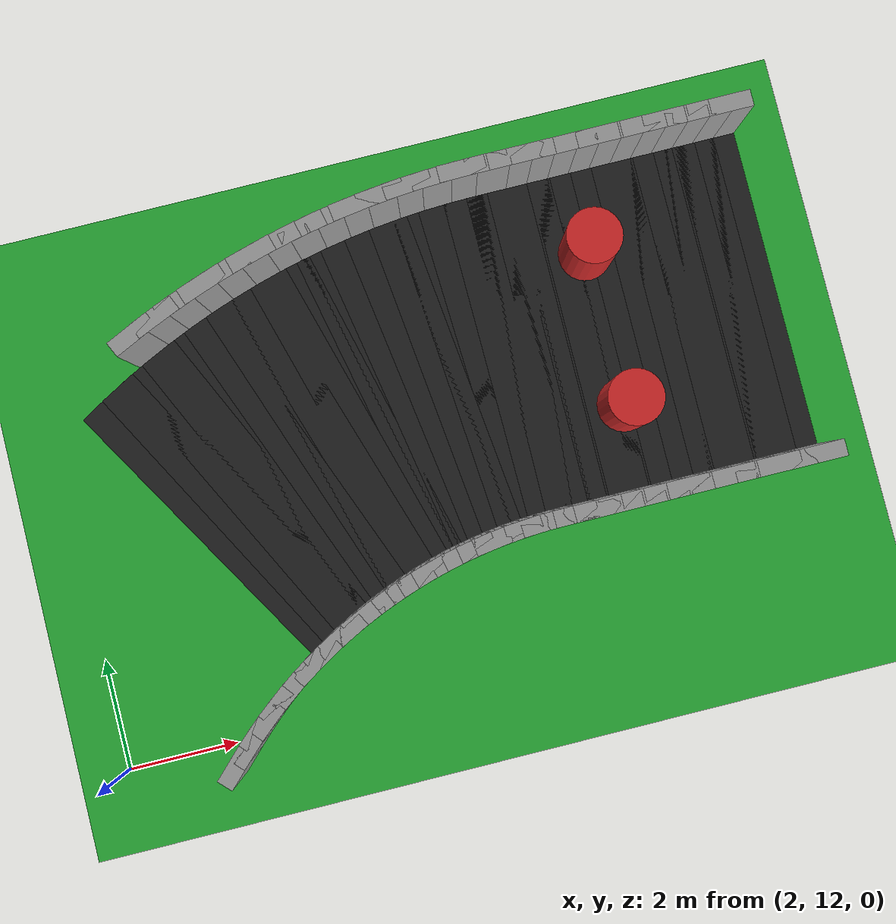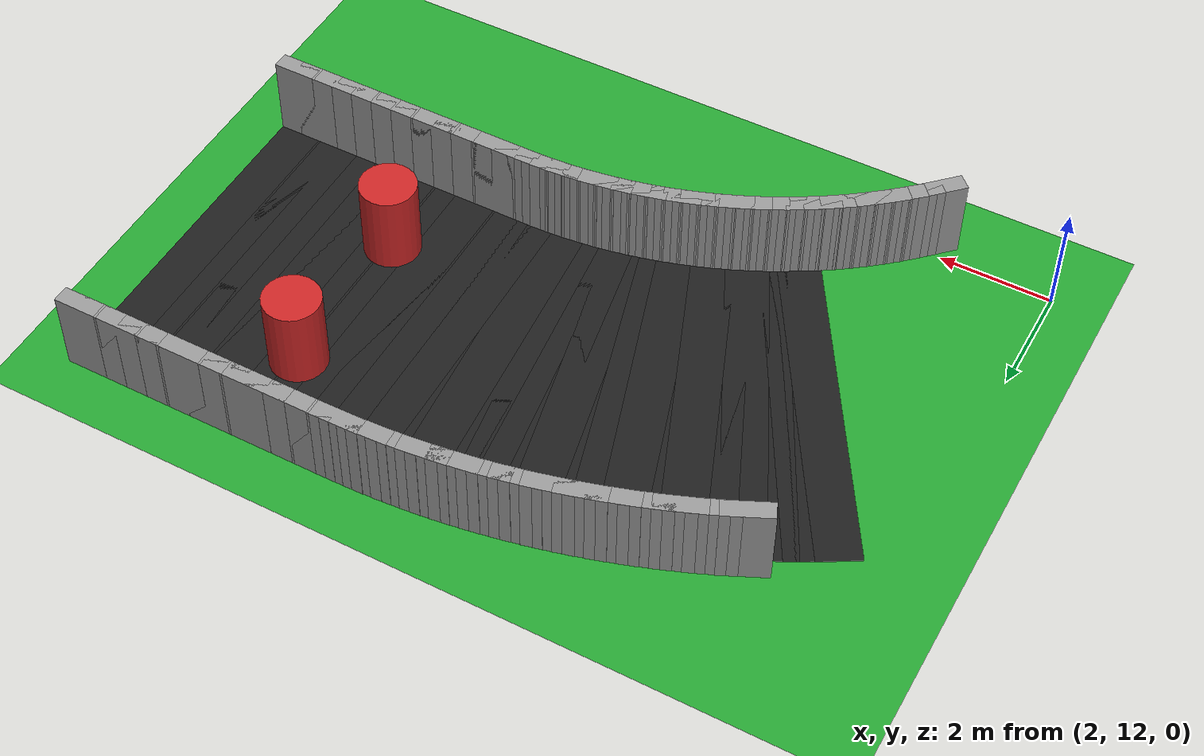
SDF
<sdf version="1.6">
 <world name="obstacle_mid">
  <include><uri>model://sun</uri></include>
  <model name="ground_plane">
   <static>true</static>
   <link name="link">
    <collision name="collision">
     <surface><friction><ode><mu>100</mu><mu2>50</mu2></ode></friction></surface>
     <geometry><plane><normal>0 0 1</normal><size>120 120</size></plane></geometry>
    </collision>
    <visual name="visual">
     <geometry><plane><normal>0 0 1</normal><size>120 120</size></plane></geometry>
     <material>
      <script><uri>file://media/materials/scripts/gazebo.material</uri><name>Gazebo/Green</name></script>
     </material>
    </visual>
   </link>
  </model>
  <model name="asphalt_191">
   <static>true</static>
   <pose>15.206 17.710 0.005 0 0 3.14159</pose>
   <link name="link">
    <visual name="visual">
     <geometry><box><size>0.760 6.000 0.010</size></box></geometry>
     <material>
      <script><uri>file://media/materials/scripts/gazebo.material</uri><name>Gazebo/Black</name></script>
     </material>
    </visual>
   </link>
  </model>
  <model name="curbL_191">
   <static>true</static>
   <pose>15.206 14.560 0.750 0 0 3.14159</pose>
   <link name="link">
    <collision name="collision"><geometry><box><size>0.760 0.300 1.500</size></box></geometry></collision>
    <visual name="visual">
     <geometry><box><size>0.760 0.300 1.500</size></box></geometry>
     <material>
      <script><uri>file://media/materials/scripts/gazebo.material</uri><name>Gazebo/Grey</name></script>
     </material>
    </visual>
   </link>
  </model>
  <model name="curbR_191">
   <static>true</static>
   <pose>15.206 20.860 0.750 0 0 3.14159</pose>
   <link name="link">
    <collision name="collision"><geometry><box><size>0.760 0.300 1.500</size></box></geometry></collision>
    <visual name="visual">
     <geometry><box><size>0.760 0.300 1.500</size></box></geometry>
     <material>
      <script><uri>file://media/materials/scripts/gazebo.material</uri><name>Gazebo/Grey</name></script>
     </material>
    </visual>
   </link>
  </model>
  <model name="asphalt_192">
   <static>true</static>
   <pose>14.806 17.710 0.005 0 0 3.14159</pose>
   <link name="link">
    <visual name="visual">
     <geometry><box><size>0.760 6.000 0.010</size></box></geometry>
     <material>
      <script><uri>file://media/materials/scripts/gazebo.material</uri><name>Gazebo/Black</name></script>
     </material>
    </visual>
   </link>
  </model>
  <model name="curbL_192">
   <static>true</static>
   <pose>14.806 14.560 0.750 0 0 3.14159</pose>
   <link name="link">
    <collision name="collision"><geometry><box><size>0.760 0.300 1.500</size></box></geometry></collision>
    <visual name="visual">
     <geometry><box><size>0.760 0.300 1.500</size></box></geometry>
     <material>
      <script><uri>file://media/materials/scripts/gazebo.material</uri><name>Gazebo/Grey</name></script>
     </material>
    </visual>
   </link>
  </model>
  <model name="curbR_192">
   <static>true</static>
   <pose>14.806 20.860 0.750 0 0 3.14159</pose>
   <link name="link">
    <collision name="collision"><geometry><box><size>0.760 0.300 1.500</size></box></geometry></collision>
    <visual name="visual">
     <geometry><box><size>0.760 0.300 1.500</size></box></geometry>
     <material>
      <script><uri>file://media/materials/scripts/gazebo.material</uri><name>Gazebo/Grey</name></script>
     </material>
    </visual>
   </link>
  </model>
  <model name="asphalt_193">
   <static>true</static>
   <pose>14.406 17.710 0.005 0 0 3.14159</pose>
   <link name="link">
    <visual name="visual">
     <geometry><box><size>0.760 6.000 0.010</size></box></geometry>
     <material>
      <script><uri>file://media/materials/scripts/gazebo.material</uri><name>Gazebo/Black</name></script>
     </material>
    </visual>
   </link>
  </model>
  <model name="curbL_193">
   <static>true</static>
   <pose>14.406 14.560 0.750 0 0 3.14159</pose>
   <link name="link">
    <collision name="collision"><geometry><box><size>0.760 0.300 1.500</size></box></geometry></collision>
    <visual name="visual">
     <geometry><box><size>0.760 0.300 1.500</size></box></geometry>
     <material>
      <script><uri>file://media/materials/scripts/gazebo.material</uri><name>Gazebo/Grey</name></script>
     </material>
    </visual>
   </link>
  </model>
  <model name="curbR_193">
   <static>true</static>
   <pose>14.406 20.860 0.750 0 0 3.14159</pose>
   <link name="link">
    <collision name="collision"><geometry><box><size>0.760 0.300 1.500</size></box></geometry></collision>
    <visual name="visual">
     <geometry><box><size>0.760 0.300 1.500</size></box></geometry>
     <material>
      <script><uri>file://media/materials/scripts/gazebo.material</uri><name>Gazebo/Grey</name></script>
     </material>
    </visual>
   </link>
  </model>
  <model name="asphalt_194">
   <static>true</static>
   <pose>14.006 17.710 0.005 0 0 3.14159</pose>
   <link name="link">
    <visual name="visual">
     <geometry><box><size>0.760 6.000 0.010</size></box></geometry>
     <material>
      <script><uri>file://media/materials/scripts/gazebo.material</uri><name>Gazebo/Black</name></script>
     </material>
    </visual>
   </link>
  </model>
  <model name="curbL_194">
   <static>true</static>
   <pose>14.006 14.560 0.750 0 0 3.14159</pose>
   <link name="link">
    <collision name="collision"><geometry><box><size>0.760 0.300 1.500</size></box></geometry></collision>
    <visual name="visual">
     <geometry><box><size>0.760 0.300 1.500</size></box></geometry>
     <material>
      <script><uri>file://media/materials/scripts/gazebo.material</uri><name>Gazebo/Grey</name></script>
     </material>
    </visual>
   </link>
  </model>
  <model name="curbR_194">
   <static>true</static>
   <pose>14.006 20.860 0.750 0 0 3.14159</pose>
   <link name="link">
    <collision name="collision"><geometry><box><size>0.760 0.300 1.500</size></box></geometry></collision>
    <visual name="visual">
     <geometry><box><size>0.760 0.300 1.500</size></box></geometry>
     <material>
      <script><uri>file://media/materials/scripts/gazebo.material</uri><name>Gazebo/Grey</name></script>
     </material>
    </visual>
   </link>
  </model>
  <model name="asphalt_195">
   <static>true</static>
   <pose>13.606 17.710 0.005 0 0 3.14159</pose>
   <link name="link">
    <visual name="visual">
     <geometry><box><size>0.760 6.000 0.010</size></box></geometry>
     <material>
      <script><uri>file://media/materials/scripts/gazebo.material</uri><name>Gazebo/Black</name></script>
     </material>
    </visual>
   </link>
  </model>
  <model name="curbL_195">
   <static>true</static>
   <pose>13.606 14.560 0.750 0 0 3.14159</pose>
   <link name="link">
    <collision name="collision"><geometry><box><size>0.760 0.300 1.500</size></box></geometry></collision>
    <visual name="visual">
     <geometry><box><size>0.760 0.300 1.500</size></box></geometry>
     <material>
      <script><uri>file://media/materials/scripts/gazebo.material</uri><name>Gazebo/Grey</name></script>
     </material>
    </visual>
   </link>
  </model>
  <model name="curbR_195">
   <static>true</static>
   <pose>13.606 20.860 0.750 0 0 3.14159</pose>
   <link name="link">
    <collision name="collision"><geometry><box><size>0.760 0.300 1.500</size></box></geometry></collision>
    <visual name="visual">
     <geometry><box><size>0.760 0.300 1.500</size></box></geometry>
     <material>
      <script><uri>file://media/materials/scripts/gazebo.material</uri><name>Gazebo/Grey</name></script>
     </material>
    </visual>
   </link>
  </model>
  <model name="asphalt_196">
   <static>true</static>
   <pose>13.206 17.710 0.005 0 0 3.14159</pose>
   <link name="link">
    <visual name="visual">
     <geometry><box><size>0.760 6.000 0.010</size></box></geometry>
     <material>
      <script><uri>file://media/materials/scripts/gazebo.material</uri><name>Gazebo/Black</name></script>
     </material>
    </visual>
   </link>
  </model>
  <model name="curbL_196">
   <static>true</static>
   <pose>13.206 14.560 0.750 0 0 3.14159</pose>
   <link name="link">
    <collision name="collision"><geometry><box><size>0.760 0.300 1.500</size></box></geometry></collision>
    <visual name="visual">
     <geometry><box><size>0.760 0.300 1.500</size></box></geometry>
     <material>
      <script><uri>file://media/materials/scripts/gazebo.material</uri><name>Gazebo/Grey</name></script>
     </material>
    </visual>
   </link>
  </model>
  <model name="curbR_196">
   <static>true</static>
   <pose>13.206 20.860 0.750 0 0 3.14159</pose>
   <link name="link">
    <collision name="collision"><geometry><box><size>0.760 0.300 1.500</size></box></geometry></collision>
    <visual name="visual">
     <geometry><box><size>0.760 0.300 1.500</size></box></geometry>
     <material>
      <script><uri>file://media/materials/scripts/gazebo.material</uri><name>Gazebo/Grey</name></script>
     </material>
    </visual>
   </link>
  </model>
  <model name="asphalt_197">
   <static>true</static>
   <pose>12.806 17.710 0.005 0 0 3.14159</pose>
   <link name="link">
    <visual name="visual">
     <geometry><box><size>0.760 6.000 0.010</size></box></geometry>
     <material>
      <script><uri>file://media/materials/scripts/gazebo.material</uri><name>Gazebo/Black</name></script>
     </material>
    </visual>
   </link>
  </model>
  <model name="curbL_197">
   <static>true</static>
   <pose>12.806 14.560 0.750 0 0 3.14159</pose>
   <link name="link">
    <collision name="collision"><geometry><box><size>0.760 0.300 1.500</size></box></geometry></collision>
    <visual name="visual">
     <geometry><box><size>0.760 0.300 1.500</size></box></geometry>
     <material>
      <script><uri>file://media/materials/scripts/gazebo.material</uri><name>Gazebo/Grey</name></script>
     </material>
    </visual>
   </link>
  </model>
  <model name="curbR_197">
   <static>true</static>
   <pose>12.806 20.860 0.750 0 0 3.14159</pose>
   <link name="link">
    <collision name="collision"><geometry><box><size>0.760 0.300 1.500</size></box></geometry></collision>
    <visual name="visual">
     <geometry><box><size>0.760 0.300 1.500</size></box></geometry>
     <material>
      <script><uri>file://media/materials/scripts/gazebo.material</uri><name>Gazebo/Grey</name></script>
     </material>
    </visual>
   </link>
  </model>
  <model name="asphalt_198">
   <static>true</static>
   <pose>12.406 17.710 0.005 0 0 3.14159</pose>
   <link name="link">
    <visual name="visual">
     <geometry><box><size>0.760 6.000 0.010</size></box></geometry>
     <material>
      <script><uri>file://media/materials/scripts/gazebo.material</uri><name>Gazebo/Black</name></script>
     </material>
    </visual>
   </link>
  </model>
  <model name="curbL_198">
   <static>true</static>
   <pose>12.406 14.560 0.750 0 0 3.14159</pose>
   <link name="link">
    <collision name="collision"><geometry><box><size>0.760 0.300 1.500</size></box></geometry></collision>
    <visual name="visual">
     <geometry><box><size>0.760 0.300 1.500</size></box></geometry>
     <material>
      <script><uri>file://media/materials/scripts/gazebo.material</uri><name>Gazebo/Grey</name></script>
     </material>
    </visual>
   </link>
  </model>
  <model name="curbR_198">
   <static>true</static>
   <pose>12.406 20.860 0.750 0 0 3.14159</pose>
   <link name="link">
    <collision name="collision"><geometry><box><size>0.760 0.300 1.500</size></box></geometry></collision>
    <visual name="visual">
     <geometry><box><size>0.760 0.300 1.500</size></box></geometry>
     <material>
      <script><uri>file://media/materials/scripts/gazebo.material</uri><name>Gazebo/Grey</name></script>
     </material>
    </visual>
   </link>
  </model>
  <model name="asphalt_199">
   <static>true</static>
   <pose>12.006 17.710 0.005 0 0 3.14159</pose>
   <link name="link">
    <visual name="visual">
     <geometry><box><size>0.760 6.000 0.010</size></box></geometry>
     <material>
      <script><uri>file://media/materials/scripts/gazebo.material</uri><name>Gazebo/Black</name></script>
     </material>
    </visual>
   </link>
  </model>
  <model name="curbL_199">
   <static>true</static>
   <pose>12.006 14.560 0.750 0 0 3.14159</pose>
   <link name="link">
    <collision name="collision"><geometry><box><size>0.760 0.300 1.500</size></box></geometry></collision>
    <visual name="visual">
     <geometry><box><size>0.760 0.300 1.500</size></box></geometry>
     <material>
      <script><uri>file://media/materials/scripts/gazebo.material</uri><name>Gazebo/Grey</name></script>
     </material>
    </visual>
   </link>
  </model>
  <model name="curbR_199">
   <static>true</static>
   <pose>12.006 20.860 0.750 0 0 3.14159</pose>
   <link name="link">
    <collision name="collision"><geometry><box><size>0.760 0.300 1.500</size></box></geometry></collision>
    <visual name="visual">
     <geometry><box><size>0.760 0.300 1.500</size></box></geometry>
     <material>
      <script><uri>file://media/materials/scripts/gazebo.material</uri><name>Gazebo/Grey</name></script>
     </material>
    </visual>
   </link>
  </model>
  <model name="asphalt_200">
   <static>true</static>
   <pose>11.606 17.710 0.005 0 0 3.14159</pose>
   <link name="link">
    <visual name="visual">
     <geometry><box><size>0.760 6.000 0.010</size></box></geometry>
     <material>
      <script><uri>file://media/materials/scripts/gazebo.material</uri><name>Gazebo/Black</name></script>
     </material>
    </visual>
   </link>
  </model>
  <model name="curbL_200">
   <static>true</static>
   <pose>11.606 14.560 0.750 0 0 3.14159</pose>
   <link name="link">
    <collision name="collision"><geometry><box><size>0.760 0.300 1.500</size></box></geometry></collision>
    <visual name="visual">
     <geometry><box><size>0.760 0.300 1.500</size></box></geometry>
     <material>
      <script><uri>file://media/materials/scripts/gazebo.material</uri><name>Gazebo/Grey</name></script>
     </material>
    </visual>
   </link>
  </model>
  <model name="curbR_200">
   <static>true</static>
   <pose>11.606 20.860 0.750 0 0 3.14159</pose>
   <link name="link">
    <collision name="collision"><geometry><box><size>0.760 0.300 1.500</size></box></geometry></collision>
    <visual name="visual">
     <geometry><box><size>0.760 0.300 1.500</size></box></geometry>
     <material>
      <script><uri>file://media/materials/scripts/gazebo.material</uri><name>Gazebo/Grey</name></script>
     </material>
    </visual>
   </link>
  </model>
  <model name="asphalt_201">
   <static>true</static>
   <pose>11.206 17.710 0.005 0 0 3.14159</pose>
   <link name="link">
    <visual name="visual">
     <geometry><box><size>0.760 6.000 0.010</size></box></geometry>
     <material>
      <script><uri>file://media/materials/scripts/gazebo.material</uri><name>Gazebo/Black</name></script>
     </material>
    </visual>
   </link>
  </model>
  <model name="curbL_201">
   <static>true</static>
   <pose>11.206 14.560 0.750 0 0 3.14159</pose>
   <link name="link">
    <collision name="collision"><geometry><box><size>0.760 0.300 1.500</size></box></geometry></collision>
    <visual name="visual">
     <geometry><box><size>0.760 0.300 1.500</size></box></geometry>
     <material>
      <script><uri>file://media/materials/scripts/gazebo.material</uri><name>Gazebo/Grey</name></script>
     </material>
    </visual>
   </link>
  </model>
  <model name="curbR_201">
   <static>true</static>
   <pose>11.206 20.860 0.750 0 0 3.14159</pose>
   <link name="link">
    <collision name="collision"><geometry><box><size>0.760 0.300 1.500</size></box></geometry></collision>
    <visual name="visual">
     <geometry><box><size>0.760 0.300 1.500</size></box></geometry>
     <material>
      <script><uri>file://media/materials/scripts/gazebo.material</uri><name>Gazebo/Grey</name></script>
     </material>
    </visual>
   </link>
  </model>
  <model name="asphalt_202">
   <static>true</static>
   <pose>10.806 17.710 0.005 0 0 3.14159</pose>
   <link name="link">
    <visual name="visual">
     <geometry><box><size>0.760 6.000 0.010</size></box></geometry>
     <material>
      <script><uri>file://media/materials/scripts/gazebo.material</uri><name>Gazebo/Black</name></script>
     </material>
    </visual>
   </link>
  </model>
  <model name="curbL_202">
   <static>true</static>
   <pose>10.806 14.560 0.750 0 0 3.14159</pose>
   <link name="link">
    <collision name="collision"><geometry><box><size>0.760 0.300 1.500</size></box></geometry></collision>
    <visual name="visual">
     <geometry><box><size>0.760 0.300 1.500</size></box></geometry>
     <material>
      <script><uri>file://media/materials/scripts/gazebo.material</uri><name>Gazebo/Grey</name></script>
     </material>
    </visual>
   </link>
  </model>
  <model name="curbR_202">
   <static>true</static>
   <pose>10.806 20.860 0.750 0 0 3.14159</pose>
   <link name="link">
    <collision name="collision"><geometry><box><size>0.760 0.300 1.500</size></box></geometry></collision>
    <visual name="visual">
     <geometry><box><size>0.760 0.300 1.500</size></box></geometry>
     <material>
      <script><uri>file://media/materials/scripts/gazebo.material</uri><name>Gazebo/Grey</name></script>
     </material>
    </visual>
   </link>
  </model>
  <model name="asphalt_203">
   <static>true</static>
   <pose>10.410 17.706 0.005 0 0 -3.12523</pose>
   <link name="link">
    <visual name="visual">
     <geometry><box><size>0.753 6.000 0.010</size></box></geometry>
     <material>
      <script><uri>file://media/materials/scripts/gazebo.material</uri><name>Gazebo/Black</name></script>
     </material>
    </visual>
   </link>
  </model>
  <model name="curbL_203">
   <static>true</static>
   <pose>10.461 14.557 0.750 0 0 -3.12523</pose>
   <link name="link">
    <collision name="collision"><geometry><box><size>0.650 0.300 1.500</size></box></geometry></collision>
    <visual name="visual">
     <geometry><box><size>0.650 0.300 1.500</size></box></geometry>
     <material>
      <script><uri>file://media/materials/scripts/gazebo.material</uri><name>Gazebo/Grey</name></script>
     </material>
    </visual>
   </link>
  </model>
  <model name="curbR_203">
   <static>true</static>
   <pose>10.358 20.856 0.750 0 0 -3.12523</pose>
   <link name="link">
    <collision name="collision"><geometry><box><size>0.856 0.300 1.500</size></box></geometry></collision>
    <visual name="visual">
     <geometry><box><size>0.856 0.300 1.500</size></box></geometry>
     <material>
      <script><uri>file://media/materials/scripts/gazebo.material</uri><name>Gazebo/Grey</name></script>
     </material>
    </visual>
   </link>
  </model>
  <model name="asphalt_204">
   <static>true</static>
   <pose>10.017 17.694 0.005 0 0 -3.09251</pose>
   <link name="link">
    <visual name="visual">
     <geometry><box><size>0.753 6.000 0.010</size></box></geometry>
     <material>
      <script><uri>file://media/materials/scripts/gazebo.material</uri><name>Gazebo/Black</name></script>
     </material>
    </visual>
   </link>
  </model>
  <model name="curbL_204">
   <static>true</static>
   <pose>10.172 14.548 0.750 0 0 -3.09251</pose>
   <link name="link">
    <collision name="collision"><geometry><box><size>0.650 0.300 1.500</size></box></geometry></collision>
    <visual name="visual">
     <geometry><box><size>0.650 0.300 1.500</size></box></geometry>
     <material>
      <script><uri>file://media/materials/scripts/gazebo.material</uri><name>Gazebo/Grey</name></script>
     </material>
    </visual>
   </link>
  </model>
  <model name="curbR_204">
   <static>true</static>
   <pose>9.863 20.839 0.750 0 0 -3.09251</pose>
   <link name="link">
    <collision name="collision"><geometry><box><size>0.856 0.300 1.500</size></box></geometry></collision>
    <visual name="visual">
     <geometry><box><size>0.856 0.300 1.500</size></box></geometry>
     <material>
      <script><uri>file://media/materials/scripts/gazebo.material</uri><name>Gazebo/Grey</name></script>
     </material>
    </visual>
   </link>
  </model>
  <model name="asphalt_205">
   <static>true</static>
   <pose>9.625 17.668 0.005 0 0 -3.05978</pose>
   <link name="link">
    <visual name="visual">
     <geometry><box><size>0.753 6.000 0.010</size></box></geometry>
     <material>
      <script><uri>file://media/materials/scripts/gazebo.material</uri><name>Gazebo/Black</name></script>
     </material>
    </visual>
   </link>
  </model>
  <model name="curbL_205">
   <static>true</static>
   <pose>9.883 14.529 0.750 0 0 -3.05978</pose>
   <link name="link">
    <collision name="collision"><geometry><box><size>0.650 0.300 1.500</size></box></geometry></collision>
    <visual name="visual">
     <geometry><box><size>0.650 0.300 1.500</size></box></geometry>
     <material>
      <script><uri>file://media/materials/scripts/gazebo.material</uri><name>Gazebo/Grey</name></script>
     </material>
    </visual>
   </link>
  </model>
  <model name="curbR_205">
   <static>true</static>
   <pose>9.368 20.807 0.750 0 0 -3.05978</pose>
   <link name="link">
    <collision name="collision"><geometry><box><size>0.856 0.300 1.500</size></box></geometry></collision>
    <visual name="visual">
     <geometry><box><size>0.856 0.300 1.500</size></box></geometry>
     <material>
      <script><uri>file://media/materials/scripts/gazebo.material</uri><name>Gazebo/Grey</name></script>
     </material>
    </visual>
   </link>
  </model>
  <model name="asphalt_206">
   <static>true</static>
   <pose>9.235 17.629 0.005 0 0 -3.02706</pose>
   <link name="link">
    <visual name="visual">
     <geometry><box><size>0.753 6.000 0.010</size></box></geometry>
     <material>
      <script><uri>file://media/materials/scripts/gazebo.material</uri><name>Gazebo/Black</name></script>
     </material>
    </visual>
   </link>
  </model>
  <model name="curbL_206">
   <static>true</static>
   <pose>9.595 14.500 0.750 0 0 -3.02706</pose>
   <link name="link">
    <collision name="collision"><geometry><box><size>0.650 0.300 1.500</size></box></geometry></collision>
    <visual name="visual">
     <geometry><box><size>0.650 0.300 1.500</size></box></geometry>
     <material>
      <script><uri>file://media/materials/scripts/gazebo.material</uri><name>Gazebo/Grey</name></script>
     </material>
    </visual>
   </link>
  </model>
  <model name="curbR_206">
   <static>true</static>
   <pose>8.875 20.758 0.750 0 0 -3.02706</pose>
   <link name="link">
    <collision name="collision"><geometry><box><size>0.856 0.300 1.500</size></box></geometry></collision>
    <visual name="visual">
     <geometry><box><size>0.856 0.300 1.500</size></box></geometry>
     <material>
      <script><uri>file://media/materials/scripts/gazebo.material</uri><name>Gazebo/Grey</name></script>
     </material>
    </visual>
   </link>
  </model>
  <model name="asphalt_207">
   <static>true</static>
   <pose>8.845 17.578 0.005 0 0 -2.99433</pose>
   <link name="link">
    <visual name="visual">
     <geometry><box><size>0.753 6.000 0.010</size></box></geometry>
     <material>
      <script><uri>file://media/materials/scripts/gazebo.material</uri><name>Gazebo/Black</name></script>
     </material>
    </visual>
   </link>
  </model>
  <model name="curbL_207">
   <static>true</static>
   <pose>9.308 14.463 0.750 0 0 -2.99433</pose>
   <link name="link">
    <collision name="collision"><geometry><box><size>0.650 0.300 1.500</size></box></geometry></collision>
    <visual name="visual">
     <geometry><box><size>0.650 0.300 1.500</size></box></geometry>
     <material>
      <script><uri>file://media/materials/scripts/gazebo.material</uri><name>Gazebo/Grey</name></script>
     </material>
    </visual>
   </link>
  </model>
  <model name="curbR_207">
   <static>true</static>
   <pose>8.383 20.694 0.750 0 0 -2.99433</pose>
   <link name="link">
    <collision name="collision"><geometry><box><size>0.856 0.300 1.500</size></box></geometry></collision>
    <visual name="visual">
     <geometry><box><size>0.856 0.300 1.500</size></box></geometry>
     <material>
      <script><uri>file://media/materials/scripts/gazebo.material</uri><name>Gazebo/Grey</name></script>
     </material>
    </visual>
   </link>
  </model>
  <model name="asphalt_208">
   <static>true</static>
   <pose>8.458 17.514 0.005 0 0 -2.96161</pose>
   <link name="link">
    <visual name="visual">
     <geometry><box><size>0.753 6.000 0.010</size></box></geometry>
     <material>
      <script><uri>file://media/materials/scripts/gazebo.material</uri><name>Gazebo/Black</name></script>
     </material>
    </visual>
   </link>
  </model>
  <model name="curbL_208">
   <static>true</static>
   <pose>9.022 14.415 0.750 0 0 -2.96161</pose>
   <link name="link">
    <collision name="collision"><geometry><box><size>0.650 0.300 1.500</size></box></geometry></collision>
    <visual name="visual">
     <geometry><box><size>0.650 0.300 1.500</size></box></geometry>
     <material>
      <script><uri>file://media/materials/scripts/gazebo.material</uri><name>Gazebo/Grey</name></script>
     </material>
    </visual>
   </link>
  </model>
  <model name="curbR_208">
   <static>true</static>
   <pose>7.894 20.613 0.750 0 0 -2.96161</pose>
   <link name="link">
    <collision name="collision"><geometry><box><size>0.856 0.300 1.500</size></box></geometry></collision>
    <visual name="visual">
     <geometry><box><size>0.856 0.300 1.500</size></box></geometry>
     <material>
      <script><uri>file://media/materials/scripts/gazebo.material</uri><name>Gazebo/Grey</name></script>
     </material>
    </visual>
   </link>
  </model>
  <model name="asphalt_209">
   <static>true</static>
   <pose>8.073 17.438 0.005 0 0 -2.92888</pose>
   <link name="link">
    <visual name="visual">
     <geometry><box><size>0.753 6.000 0.010</size></box></geometry>
     <material>
      <script><uri>file://media/materials/scripts/gazebo.material</uri><name>Gazebo/Black</name></script>
     </material>
    </visual>
   </link>
  </model>
  <model name="curbL_209">
   <static>true</static>
   <pose>8.738 14.359 0.750 0 0 -2.92888</pose>
   <link name="link">
    <collision name="collision"><geometry><box><size>0.650 0.300 1.500</size></box></geometry></collision>
    <visual name="visual">
     <geometry><box><size>0.650 0.300 1.500</size></box></geometry>
     <material>
      <script><uri>file://media/materials/scripts/gazebo.material</uri><name>Gazebo/Grey</name></script>
     </material>
    </visual>
   </link>
  </model>
  <model name="curbR_209">
   <static>true</static>
   <pose>7.408 20.516 0.750 0 0 -2.92888</pose>
   <link name="link">
    <collision name="collision"><geometry><box><size>0.856 0.300 1.500</size></box></geometry></collision>
    <visual name="visual">
     <geometry><box><size>0.856 0.300 1.500</size></box></geometry>
     <material>
      <script><uri>file://media/materials/scripts/gazebo.material</uri><name>Gazebo/Grey</name></script>
     </material>
    </visual>
   </link>
  </model>
  <model name="asphalt_210">
   <static>true</static>
   <pose>7.691 17.348 0.005 0 0 -2.89616</pose>
   <link name="link">
    <visual name="visual">
     <geometry><box><size>0.753 6.000 0.010</size></box></geometry>
     <material>
      <script><uri>file://media/materials/scripts/gazebo.material</uri><name>Gazebo/Black</name></script>
     </material>
    </visual>
   </link>
  </model>
  <model name="curbL_210">
   <static>true</static>
   <pose>8.456 14.293 0.750 0 0 -2.89616</pose>
   <link name="link">
    <collision name="collision"><geometry><box><size>0.650 0.300 1.500</size></box></geometry></collision>
    <visual name="visual">
     <geometry><box><size>0.650 0.300 1.500</size></box></geometry>
     <material>
      <script><uri>file://media/materials/scripts/gazebo.material</uri><name>Gazebo/Grey</name></script>
     </material>
    </visual>
   </link>
  </model>
  <model name="curbR_210">
   <static>true</static>
   <pose>6.925 20.404 0.750 0 0 -2.89616</pose>
   <link name="link">
    <collision name="collision"><geometry><box><size>0.856 0.300 1.500</size></box></geometry></collision>
    <visual name="visual">
     <geometry><box><size>0.856 0.300 1.500</size></box></geometry>
     <material>
      <script><uri>file://media/materials/scripts/gazebo.material</uri><name>Gazebo/Grey</name></script>
     </material>
    </visual>
   </link>
  </model>
  <model name="asphalt_211">
   <static>true</static>
   <pose>7.311 17.247 0.005 0 0 -2.86343</pose>
   <link name="link">
    <visual name="visual">
     <geometry><box><size>0.753 6.000 0.010</size></box></geometry>
     <material>
      <script><uri>file://media/materials/scripts/gazebo.material</uri><name>Gazebo/Black</name></script>
     </material>
    </visual>
   </link>
  </model>
  <model name="curbL_211">
   <static>true</static>
   <pose>8.176 14.218 0.750 0 0 -2.86343</pose>
   <link name="link">
    <collision name="collision"><geometry><box><size>0.650 0.300 1.500</size></box></geometry></collision>
    <visual name="visual">
     <geometry><box><size>0.650 0.300 1.500</size></box></geometry>
     <material>
      <script><uri>file://media/materials/scripts/gazebo.material</uri><name>Gazebo/Grey</name></script>
     </material>
    </visual>
   </link>
  </model>
  <model name="curbR_211">
   <static>true</static>
   <pose>6.446 20.275 0.750 0 0 -2.86343</pose>
   <link name="link">
    <collision name="collision"><geometry><box><size>0.856 0.300 1.500</size></box></geometry></collision>
    <visual name="visual">
     <geometry><box><size>0.856 0.300 1.500</size></box></geometry>
     <material>
      <script><uri>file://media/materials/scripts/gazebo.material</uri><name>Gazebo/Grey</name></script>
     </material>
    </visual>
   </link>
  </model>
  <model name="asphalt_212">
   <static>true</static>
   <pose>6.935 17.133 0.005 0 0 -2.83071</pose>
   <link name="link">
    <visual name="visual">
     <geometry><box><size>0.753 6.000 0.010</size></box></geometry>
     <material>
      <script><uri>file://media/materials/scripts/gazebo.material</uri><name>Gazebo/Black</name></script>
     </material>
    </visual>
   </link>
  </model>
  <model name="curbL_212">
   <static>true</static>
   <pose>7.899 14.134 0.750 0 0 -2.83071</pose>
   <link name="link">
    <collision name="collision"><geometry><box><size>0.650 0.300 1.500</size></box></geometry></collision>
    <visual name="visual">
     <geometry><box><size>0.650 0.300 1.500</size></box></geometry>
     <material>
      <script><uri>file://media/materials/scripts/gazebo.material</uri><name>Gazebo/Grey</name></script>
     </material>
    </visual>
   </link>
  </model>
  <model name="curbR_212">
   <static>true</static>
   <pose>5.972 20.131 0.750 0 0 -2.83071</pose>
   <link name="link">
    <collision name="collision"><geometry><box><size>0.856 0.300 1.500</size></box></geometry></collision>
    <visual name="visual">
     <geometry><box><size>0.856 0.300 1.500</size></box></geometry>
     <material>
      <script><uri>file://media/materials/scripts/gazebo.material</uri><name>Gazebo/Grey</name></script>
     </material>
    </visual>
   </link>
  </model>
  <model name="asphalt_213">
   <static>true</static>
   <pose>6.564 17.007 0.005 0 0 -2.79798</pose>
   <link name="link">
    <visual name="visual">
     <geometry><box><size>0.753 6.000 0.010</size></box></geometry>
     <material>
      <script><uri>file://media/materials/scripts/gazebo.material</uri><name>Gazebo/Black</name></script>
     </material>
    </visual>
   </link>
  </model>
  <model name="curbL_213">
   <static>true</static>
   <pose>7.625 14.041 0.750 0 0 -2.79798</pose>
   <link name="link">
    <collision name="collision"><geometry><box><size>0.650 0.300 1.500</size></box></geometry></collision>
    <visual name="visual">
     <geometry><box><size>0.650 0.300 1.500</size></box></geometry>
     <material>
      <script><uri>file://media/materials/scripts/gazebo.material</uri><name>Gazebo/Grey</name></script>
     </material>
    </visual>
   </link>
  </model>
  <model name="curbR_213">
   <static>true</static>
   <pose>5.503 19.972 0.750 0 0 -2.79798</pose>
   <link name="link">
    <collision name="collision"><geometry><box><size>0.856 0.300 1.500</size></box></geometry></collision>
    <visual name="visual">
     <geometry><box><size>0.856 0.300 1.500</size></box></geometry>
     <material>
      <script><uri>file://media/materials/scripts/gazebo.material</uri><name>Gazebo/Grey</name></script>
     </material>
    </visual>
   </link>
  </model>
  <model name="asphalt_214">
   <static>true</static>
   <pose>6.196 16.868 0.005 0 0 -2.76526</pose>
   <link name="link">
    <visual name="visual">
     <geometry><box><size>0.753 6.000 0.010</size></box></geometry>
     <material>
      <script><uri>file://media/materials/scripts/gazebo.material</uri><name>Gazebo/Black</name></script>
     </material>
    </visual>
   </link>
  </model>
  <model name="curbL_214">
   <static>true</static>
   <pose>7.354 13.939 0.750 0 0 -2.76526</pose>
   <link name="link">
    <collision name="collision"><geometry><box><size>0.650 0.300 1.500</size></box></geometry></collision>
    <visual name="visual">
     <geometry><box><size>0.650 0.300 1.500</size></box></geometry>
     <material>
      <script><uri>file://media/materials/scripts/gazebo.material</uri><name>Gazebo/Grey</name></script>
     </material>
    </visual>
   </link>
  </model>
  <model name="curbR_214">
   <static>true</static>
   <pose>5.039 19.797 0.750 0 0 -2.76526</pose>
   <link name="link">
    <collision name="collision"><geometry><box><size>0.856 0.300 1.500</size></box></geometry></collision>
    <visual name="visual">
     <geometry><box><size>0.856 0.300 1.500</size></box></geometry>
     <material>
      <script><uri>file://media/materials/scripts/gazebo.material</uri><name>Gazebo/Grey</name></script>
     </material>
    </visual>
   </link>
  </model>
  <model name="asphalt_215">
   <static>true</static>
   <pose>5.833 16.718 0.005 0 0 -2.73253</pose>
   <link name="link">
    <visual name="visual">
     <geometry><box><size>0.753 6.000 0.010</size></box></geometry>
     <material>
      <script><uri>file://media/materials/scripts/gazebo.material</uri><name>Gazebo/Black</name></script>
     </material>
    </visual>
   </link>
  </model>
  <model name="curbL_215">
   <static>true</static>
   <pose>7.086 13.828 0.750 0 0 -2.73253</pose>
   <link name="link">
    <collision name="collision"><geometry><box><size>0.650 0.300 1.500</size></box></geometry></collision>
    <visual name="visual">
     <geometry><box><size>0.650 0.300 1.500</size></box></geometry>
     <material>
      <script><uri>file://media/materials/scripts/gazebo.material</uri><name>Gazebo/Grey</name></script>
     </material>
    </visual>
   </link>
  </model>
  <model name="curbR_215">
   <static>true</static>
   <pose>4.581 19.608 0.750 0 0 -2.73253</pose>
   <link name="link">
    <collision name="collision"><geometry><box><size>0.856 0.300 1.500</size></box></geometry></collision>
    <visual name="visual">
     <geometry><box><size>0.856 0.300 1.500</size></box></geometry>
     <material>
      <script><uri>file://media/materials/scripts/gazebo.material</uri><name>Gazebo/Grey</name></script>
     </material>
    </visual>
   </link>
  </model>
  <model name="asphalt_216">
   <static>true</static>
   <pose>5.476 16.556 0.005 0 0 -2.69981</pose>
   <link name="link">
    <visual name="visual">
     <geometry><box><size>0.753 6.000 0.010</size></box></geometry>
     <material>
      <script><uri>file://media/materials/scripts/gazebo.material</uri><name>Gazebo/Black</name></script>
     </material>
    </visual>
   </link>
  </model>
  <model name="curbL_216">
   <static>true</static>
   <pose>6.822 13.709 0.750 0 0 -2.69981</pose>
   <link name="link">
    <collision name="collision"><geometry><box><size>0.650 0.300 1.500</size></box></geometry></collision>
    <visual name="visual">
     <geometry><box><size>0.650 0.300 1.500</size></box></geometry>
     <material>
      <script><uri>file://media/materials/scripts/gazebo.material</uri><name>Gazebo/Grey</name></script>
     </material>
    </visual>
   </link>
  </model>
  <model name="curbR_216">
   <static>true</static>
   <pose>4.129 19.403 0.750 0 0 -2.69981</pose>
   <link name="link">
    <collision name="collision"><geometry><box><size>0.856 0.300 1.500</size></box></geometry></collision>
    <visual name="visual">
     <geometry><box><size>0.856 0.300 1.500</size></box></geometry>
     <material>
      <script><uri>file://media/materials/scripts/gazebo.material</uri><name>Gazebo/Grey</name></script>
     </material>
    </visual>
   </link>
  </model>
  <model name="asphalt_217">
   <static>true</static>
   <pose>5.124 16.382 0.005 0 0 -2.66708</pose>
   <link name="link">
    <visual name="visual">
     <geometry><box><size>0.753 6.000 0.010</size></box></geometry>
     <material>
      <script><uri>file://media/materials/scripts/gazebo.material</uri><name>Gazebo/Black</name></script>
     </material>
    </visual>
   </link>
  </model>
  <model name="curbL_217">
   <static>true</static>
   <pose>6.563 13.581 0.750 0 0 -2.66708</pose>
   <link name="link">
    <collision name="collision"><geometry><box><size>0.650 0.300 1.500</size></box></geometry></collision>
    <visual name="visual">
     <geometry><box><size>0.650 0.300 1.500</size></box></geometry>
     <material>
      <script><uri>file://media/materials/scripts/gazebo.material</uri><name>Gazebo/Grey</name></script>
     </material>
    </visual>
   </link>
  </model>
  <model name="asphalt_218">
   <static>true</static>
   <pose>4.777 16.197 0.005 0 0 -2.63436</pose>
   <link name="link">
    <visual name="visual">
     <geometry><box><size>0.753 6.000 0.010</size></box></geometry>
     <material>
      <script><uri>file://media/materials/scripts/gazebo.material</uri><name>Gazebo/Black</name></script>
     </material>
    </visual>
   </link>
  </model>
  <model name="curbL_218">
   <static>true</static>
   <pose>6.307 13.444 0.750 0 0 -2.63436</pose>
   <link name="link">
    <collision name="collision"><geometry><box><size>0.650 0.300 1.500</size></box></geometry></collision>
    <visual name="visual">
     <geometry><box><size>0.650 0.300 1.500</size></box></geometry>
     <material>
      <script><uri>file://media/materials/scripts/gazebo.material</uri><name>Gazebo/Grey</name></script>
     </material>
    </visual>
   </link>
  </model>
  <model name="asphalt_219">
   <static>true</static>
   <pose>4.437 16.001 0.005 0 0 -2.60163</pose>
   <link name="link">
    <visual name="visual">
     <geometry><box><size>0.753 6.000 0.010</size></box></geometry>
     <material>
      <script><uri>file://media/materials/scripts/gazebo.material</uri><name>Gazebo/Black</name></script>
     </material>
    </visual>
   </link>
  </model>
  <model name="curbL_219">
   <static>true</static>
   <pose>6.057 13.299 0.750 0 0 -2.60163</pose>
   <link name="link">
    <collision name="collision"><geometry><box><size>0.650 0.300 1.500</size></box></geometry></collision>
    <visual name="visual">
     <geometry><box><size>0.650 0.300 1.500</size></box></geometry>
     <material>
      <script><uri>file://media/materials/scripts/gazebo.material</uri><name>Gazebo/Grey</name></script>
     </material>
    </visual>
   </link>
  </model>
  <model name="curbL_220">
   <static>true</static>
   <pose>5.811 13.146 0.750 0 0 -2.56891</pose>
   <link name="link">
    <collision name="collision"><geometry><box><size>0.650 0.300 1.500</size></box></geometry></collision>
    <visual name="visual">
     <geometry><box><size>0.650 0.300 1.500</size></box></geometry>
     <material>
      <script><uri>file://media/materials/scripts/gazebo.material</uri><name>Gazebo/Grey</name></script>
     </material>
    </visual>
   </link>
  </model>
  <model name="curbL_221">
   <static>true</static>
   <pose>5.570 12.986 0.750 0 0 -2.53618</pose>
   <link name="link">
    <collision name="collision"><geometry><box><size>0.650 0.300 1.500</size></box></geometry></collision>
    <visual name="visual">
     <geometry><box><size>0.650 0.300 1.500</size></box></geometry>
     <material>
      <script><uri>file://media/materials/scripts/gazebo.material</uri><name>Gazebo/Grey</name></script>
     </material>
    </visual>
   </link>
  </model>
  <model name="curbL_222">
   <static>true</static>
   <pose>5.334 12.817 0.750 0 0 -2.50346</pose>
   <link name="link">
    <collision name="collision"><geometry><box><size>0.650 0.300 1.500</size></box></geometry></collision>
    <visual name="visual">
     <geometry><box><size>0.650 0.300 1.500</size></box></geometry>
     <material>
      <script><uri>file://media/materials/scripts/gazebo.material</uri><name>Gazebo/Grey</name></script>
     </material>
    </visual>
   </link>
  </model>
  <model name="curbL_223">
   <static>true</static>
   <pose>5.105 12.641 0.750 0 0 -2.47073</pose>
   <link name="link">
    <collision name="collision"><geometry><box><size>0.650 0.300 1.500</size></box></geometry></collision>
    <visual name="visual">
     <geometry><box><size>0.650 0.300 1.500</size></box></geometry>
     <material>
      <script><uri>file://media/materials/scripts/gazebo.material</uri><name>Gazebo/Grey</name></script>
     </material>
    </visual>
   </link>
  </model>
  <model name="curbL_224">
   <static>true</static>
   <pose>4.881 12.457 0.750 0 0 -2.43801</pose>
   <link name="link">
    <collision name="collision"><geometry><box><size>0.650 0.300 1.500</size></box></geometry></collision>
    <visual name="visual">
     <geometry><box><size>0.650 0.300 1.500</size></box></geometry>
     <material>
      <script><uri>file://media/materials/scripts/gazebo.material</uri><name>Gazebo/Grey</name></script>
     </material>
    </visual>
   </link>
  </model>
  <model name="curbL_225">
   <static>true</static>
   <pose>4.663 12.266 0.750 0 0 -2.40528</pose>
   <link name="link">
    <collision name="collision"><geometry><box><size>0.650 0.300 1.500</size></box></geometry></collision>
    <visual name="visual">
     <geometry><box><size>0.650 0.300 1.500</size></box></geometry>
     <material>
      <script><uri>file://media/materials/scripts/gazebo.material</uri><name>Gazebo/Grey</name></script>
     </material>
    </visual>
   </link>
  </model>
  <model name="curbL_226">
   <static>true</static>
   <pose>4.452 12.068 0.750 0 0 -2.37256</pose>
   <link name="link">
    <collision name="collision"><geometry><box><size>0.650 0.300 1.500</size></box></geometry></collision>
    <visual name="visual">
     <geometry><box><size>0.650 0.300 1.500</size></box></geometry>
     <material>
      <script><uri>file://media/materials/scripts/gazebo.material</uri><name>Gazebo/Grey</name></script>
     </material>
    </visual>
   </link>
  </model>
  <model name="curbL_227">
   <static>true</static>
   <pose>4.206 11.826 0.750 0 0 -2.35619</pose>
   <link name="link">
    <collision name="collision"><geometry><box><size>0.760 0.300 1.500</size></box></geometry></collision>
    <visual name="visual">
     <geometry><box><size>0.760 0.300 1.500</size></box></geometry>
     <material>
      <script><uri>file://media/materials/scripts/gazebo.material</uri><name>Gazebo/Grey</name></script>
     </material>
    </visual>
   </link>
  </model>
  <model name="obs_12">
   <static>true</static>
   <pose>12.312 19.160 0.750 0 0 0</pose>
   <link name="link">
    <collision name="collision">
     <geometry><cylinder><radius>0.500</radius><length>1.500</length></cylinder></geometry>
    </collision>
    <visual name="visual">
     <geometry><cylinder><radius>0.500</radius><length>1.500</length></cylinder></geometry>
     <material>
      <script><uri>file://media/materials/scripts/gazebo.material</uri><name>Gazebo/Red</name></script>
     </material>
    </visual>
   </link>
  </model>
  <model name="obs_13">
   <static>true</static>
   <pose>12.312 16.260 0.750 0 0 0</pose>
   <link name="link">
    <collision name="collision">
     <geometry><cylinder><radius>0.500</radius><length>1.500</length></cylinder></geometry>
    </collision>
    <visual name="visual">
     <geometry><cylinder><radius>0.500</radius><length>1.500</length></cylinder></geometry>
     <material>
      <script><uri>file://media/materials/scripts/gazebo.material</uri><name>Gazebo/Red</name></script>
     </material>
    </visual>
   </link>
  </model>
 </world>
</sdf>
